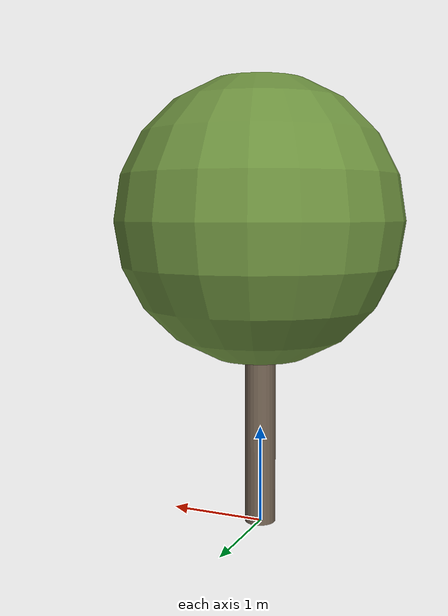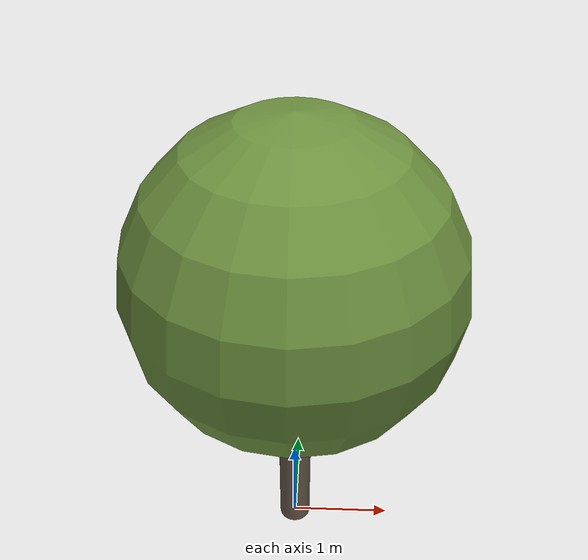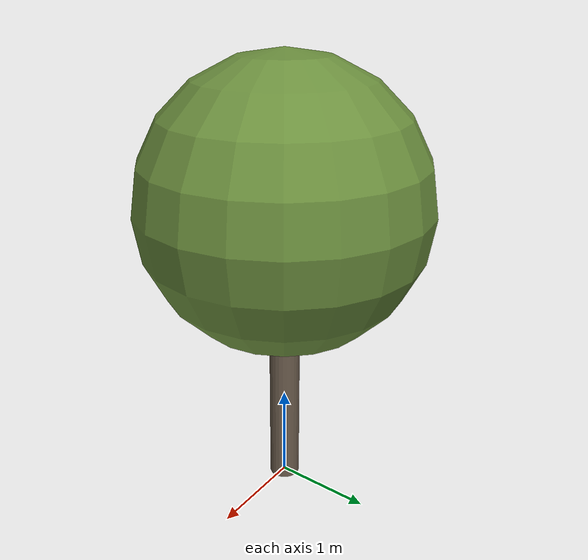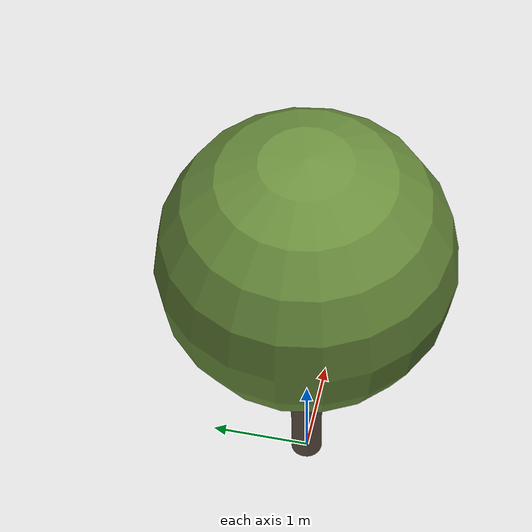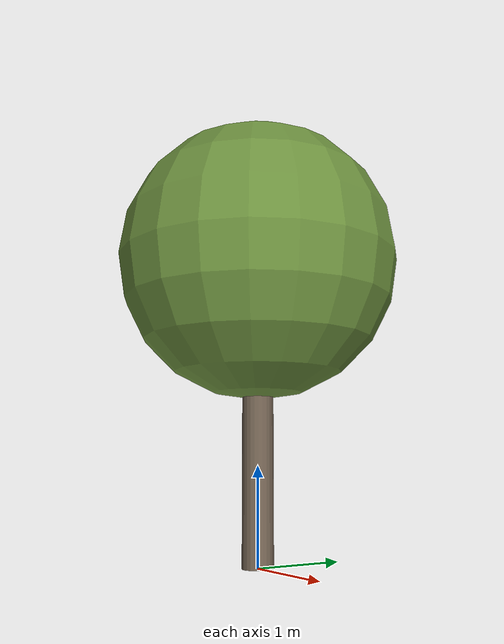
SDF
<?xml version="1.0" ?>
<sdf version="1.10">
  <model name="olivier_provence_01">
    <static>true</static>

    <!-- Tronc -->
    <link name="trunk">
      <pose>0 0 1.34636569597904 0 0 0</pose>
      <visual name="trunk_visual">
        <geometry>
          <cylinder>
            <radius>0.1588998854868734</radius>
            <length>2.69273139195808</length>
          </cylinder>
        </geometry>
        <material>
          <ambient>0.42 0.36 0.30 1</ambient>
          <diffuse>0.42 0.36 0.30 1</diffuse>
          <specular>0.1 0.1 0.1 1</specular>
        </material>
      </visual>
      <collision name="trunk_collision">
        <geometry>
          <cylinder>
            <radius>0.1588998854868734</radius>
            <length>2.69273139195808</length>
          </cylinder>
        </geometry>
      </collision>
    </link>

    <!-- Feuillage -->
    <link name="crown">
      <pose>0 0 3.1315505734137057 0 0 0</pose>
      <visual name="crown_visual">
        <geometry>
          <sphere>
              <radius>1.4627306048520854</radius>
            </sphere>
        </geometry>
        <material>
          <ambient>0.42 0.56 0.24 1</ambient>
          <diffuse>0.42 0.56 0.24 1</diffuse>
          <specular>0.1 0.1 0.1 1</specular>
        </material>
      </visual>
      <collision name="crown_collision">
        <geometry>
          <sphere>
            <radius>1.1701844838816684</radius>
          </sphere>
        </geometry>
      </collision>
    </link>

    <!-- Joint tronc-feuillage -->
    <joint name="trunk_crown_joint" type="fixed">
      <parent>trunk</parent>
      <child>crown</child>
    </joint>

  </model>
</sdf>
